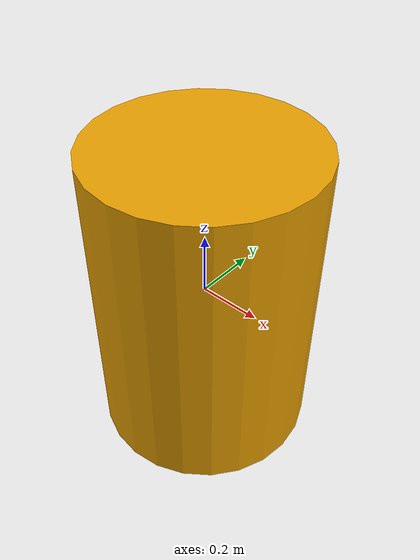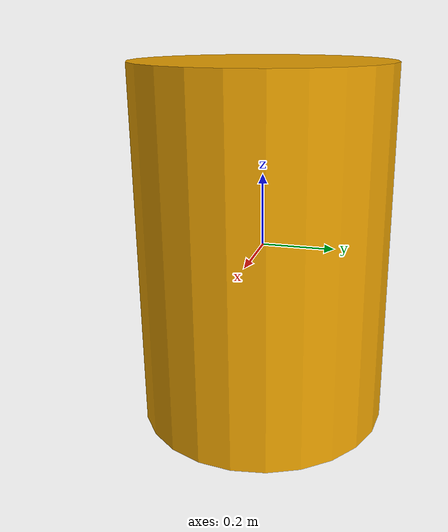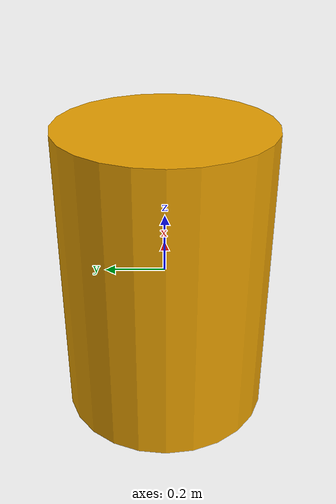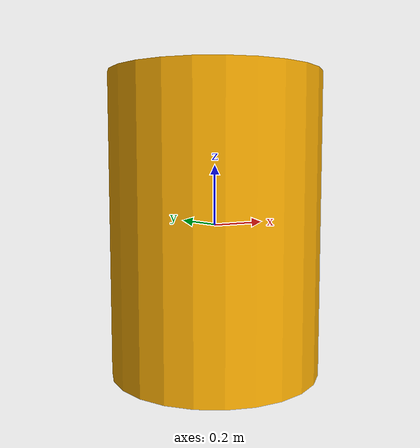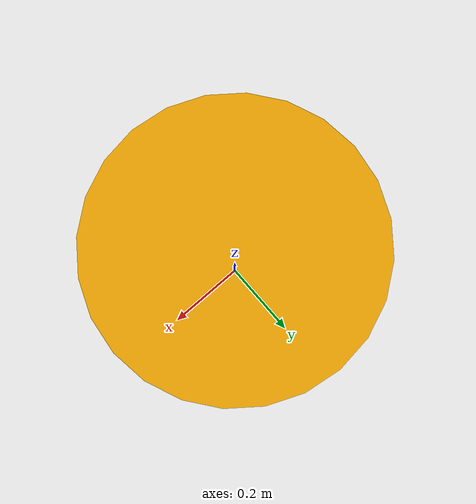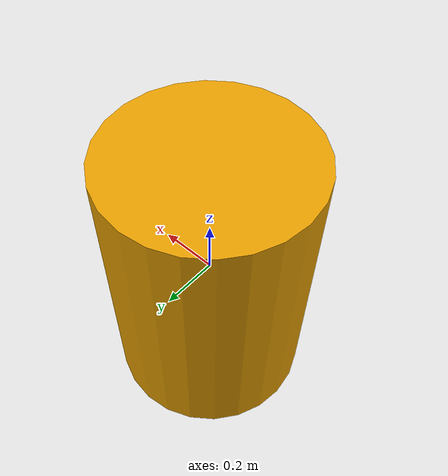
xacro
<?xml version="1.0" ?>
<robot name="obstacle" xmlns:xacro="http://www.ros.org/wiki/xacro">

  <!-- Obstacle -->
<link name="obstacle">
  <inertial>
    <origin xyz="0 0 0" />
    <mass value="100.0" />
    <inertia  ixx="1.0" ixy="0.0"  ixz="0.0"  iyy="100.0"  iyz="0.0"  izz="1.0" />
  </inertial>

  <visual>
    <origin xyz="0 0 0"/>
    <geometry>
      <cylinder radius="0.35" length="1.0" />
    </geometry>
  </visual>

  <collision>
    <origin xyz="0 0 0"/>
    <geometry>
      <cylinder radius="0.3" length="1.0" />
    </geometry>
  </collision>
</link>

</robot>
